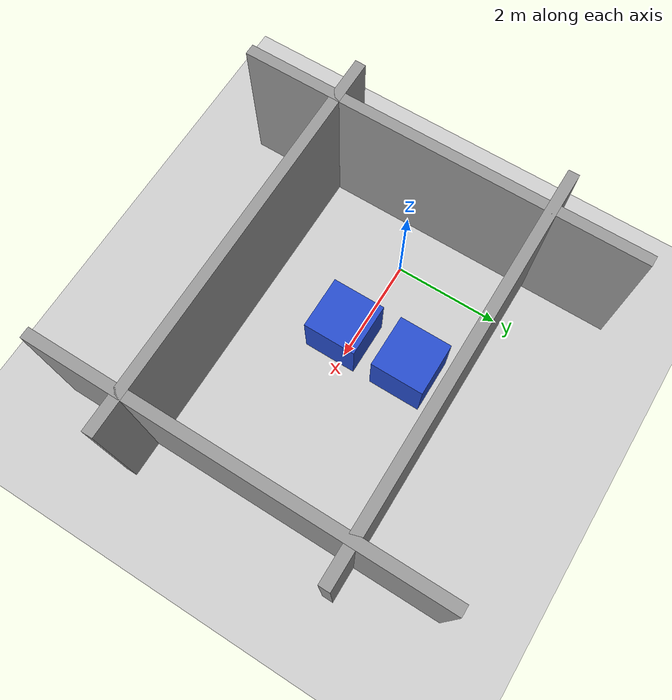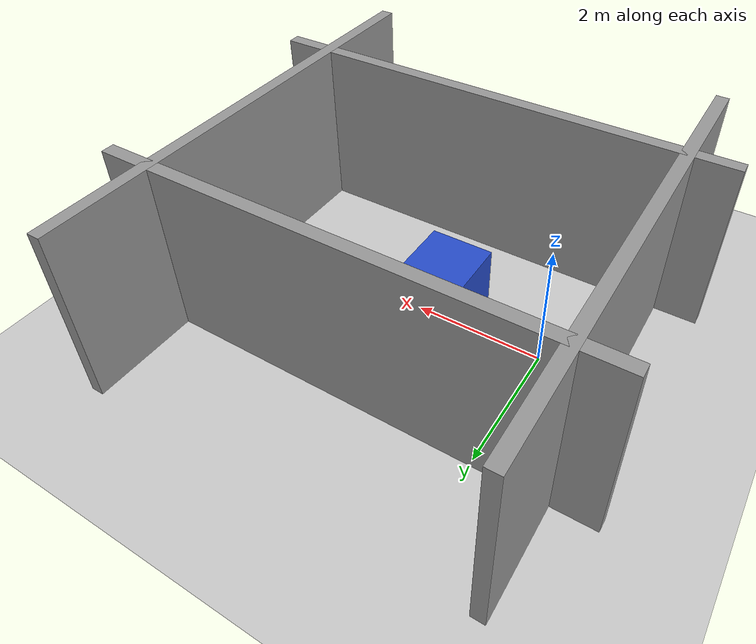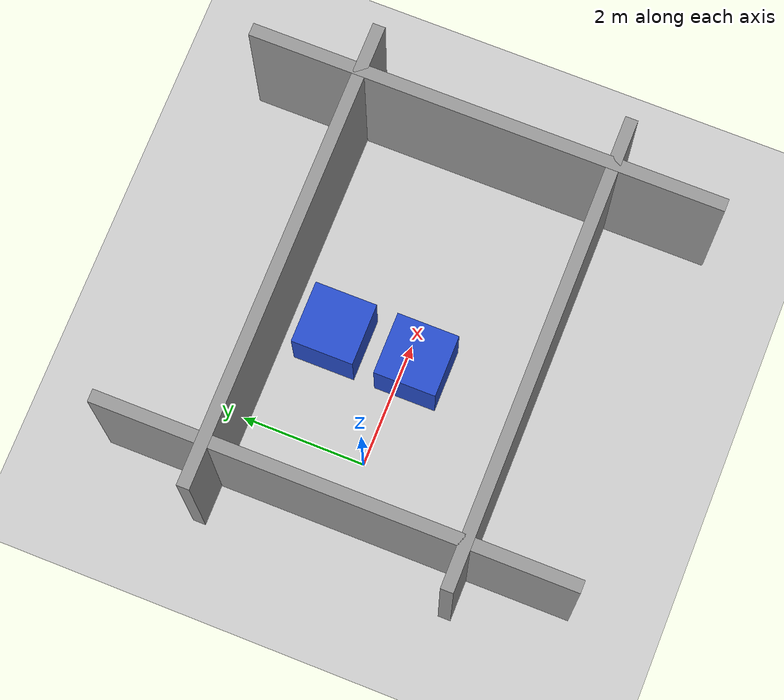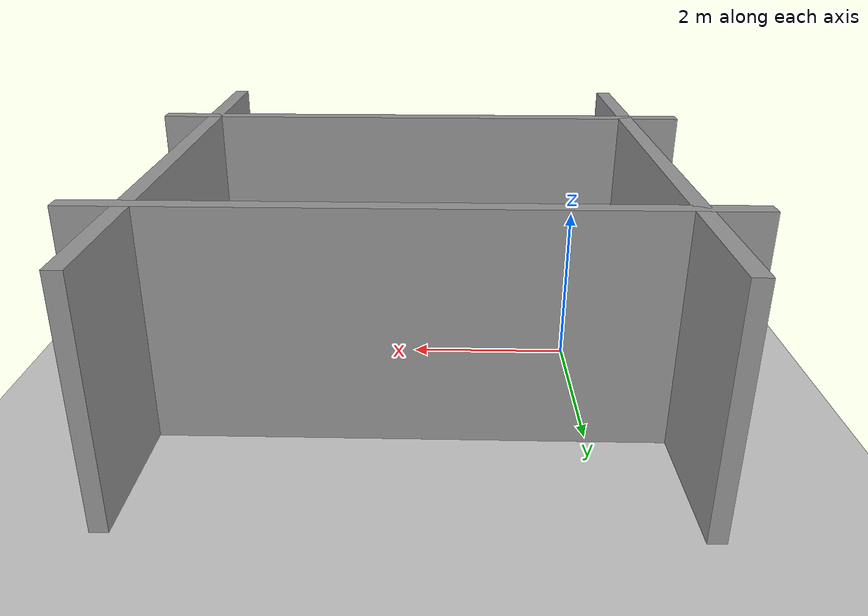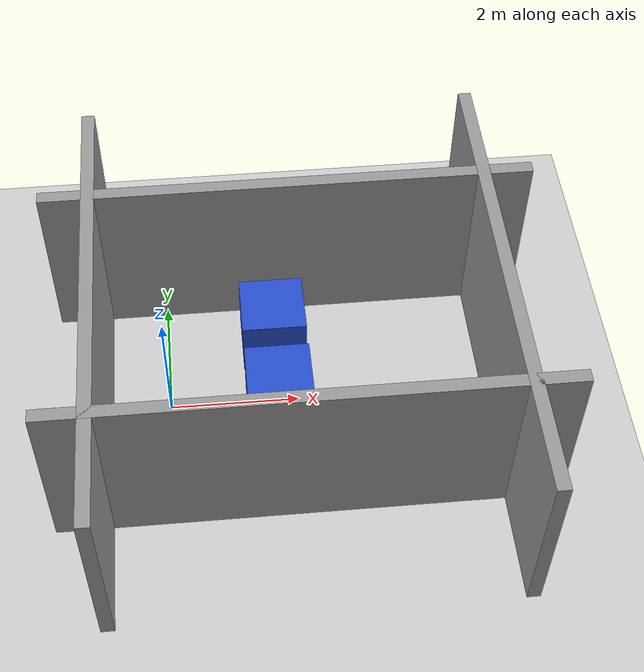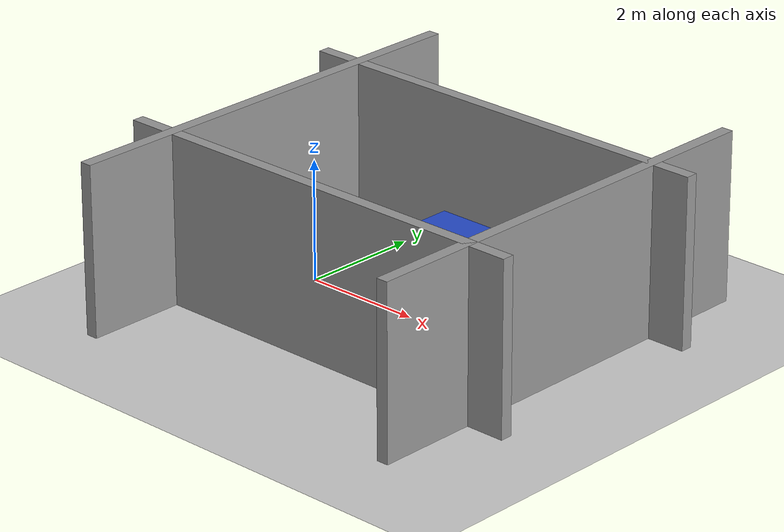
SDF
<sdf version='1.7'>
  <world name='default'>
    <light name='sun' type='directional'>
      <cast_shadows>1</cast_shadows>
      <pose>0 0 10 0 -0 0</pose>
      <diffuse>0.8 0.8 0.8 1</diffuse>
      <specular>0.2 0.2 0.2 1</specular>
      <attenuation>
        <range>1000</range>
        <constant>0.9</constant>
        <linear>0.01</linear>
        <quadratic>0.001</quadratic>
      </attenuation>
      <direction>-0.5 0.1 -0.9</direction>
      <spot>
        <inner_angle>0</inner_angle>
        <outer_angle>0</outer_angle>
        <falloff>0</falloff>
      </spot>
    </light>
    <model name='ground_plane'>
      <static>1</static>
      <link name='link'>
        <collision name='collision'>
          <geometry>
            <plane>
              <normal>0 0 1</normal>
              <size>100 100</size>
            </plane>
          </geometry>
          <surface>
            <contact>
              <collide_bitmask>65535</collide_bitmask>
              <ode/>
            </contact>
            <friction>
              <ode>
                <mu>100</mu>
                <mu2>50</mu2>
              </ode>
              <torsional>
                <ode/>
              </torsional>
            </friction>
            <bounce/>
          </surface>
          <max_contacts>10</max_contacts>
        </collision>
        <visual name='visual'>
          <cast_shadows>0</cast_shadows>
          <geometry>
            <plane>
              <normal>0 0 1</normal>
              <size>100 100</size>
            </plane>
          </geometry>
          <material>
            <script>
              <uri>file://media/materials/scripts/gazebo.material</uri>
              <name>Gazebo/Grey</name>
            </script>
          </material>
        </visual>
        <self_collide>0</self_collide>
        <enable_wind>0</enable_wind>
        <kinematic>0</kinematic>
      </link>
    </model>
    <gravity>0 0 -9.8</gravity>
    <magnetic_field>6e-06 2.3e-05 -4.2e-05</magnetic_field>
    <atmosphere type='adiabatic'/>
    <physics type='ode'>
      <max_step_size>0.001</max_step_size>
      <real_time_factor>1</real_time_factor>
      <real_time_update_rate>1000</real_time_update_rate>
    </physics>
    <scene>
      <ambient>0.4 0.4 0.4 1</ambient>
      <background>0.7 0.7 0.7 1</background>
      <shadows>1</shadows>
    </scene>
    <audio>
      <device>default</device>
    </audio>
    <wind/>
    <spherical_coordinates>
      <surface_model>EARTH_WGS84</surface_model>
      <latitude_deg>0</latitude_deg>
      <longitude_deg>0</longitude_deg>
      <elevation>0</elevation>
      <heading_deg>0</heading_deg>
    </spherical_coordinates>
    <model name='grey_wall'>
      <static>1</static>
      <pose>2 -2 0 0 -0 0</pose>
      <link name='link'>
        <pose>0 0 1.4 0 -0 0</pose>
        <collision name='collision'>
          <geometry>
            <box>
              <size>7.5 0.2 2.8</size>
            </box>
          </geometry>
          <max_contacts>10</max_contacts>
          <surface>
            <contact>
              <ode/>
            </contact>
            <bounce/>
            <friction>
              <torsional>
                <ode/>
              </torsional>
              <ode/>
            </friction>
          </surface>
        </collision>
        <visual name='visual'>
          <cast_shadows>0</cast_shadows>
          <geometry>
            <box>
              <size>7.5 0.2 2.8</size>
            </box>
          </geometry>
          <material>
            <script>
              <uri>model://grey_wall/materials/scripts</uri>
              <uri>model://grey_wall/materials/textures</uri>
              <name>vrc/grey_wall</name>
            </script>
          </material>
        </visual>
        <self_collide>0</self_collide>
        <enable_wind>0</enable_wind>
        <kinematic>0</kinematic>
      </link>
    </model>
    <model name='grey_wall_0'>
      <static>1</static>
      <pose>2 2 0 0 -0 0</pose>
      <link name='link'>
        <pose>0 0 1.4 0 -0 0</pose>
        <collision name='collision'>
          <geometry>
            <box>
              <size>7.5 0.2 2.8</size>
            </box>
          </geometry>
          <max_contacts>10</max_contacts>
          <surface>
            <contact>
              <ode/>
            </contact>
            <bounce/>
            <friction>
              <torsional>
                <ode/>
              </torsional>
              <ode/>
            </friction>
          </surface>
        </collision>
        <visual name='visual'>
          <cast_shadows>0</cast_shadows>
          <geometry>
            <box>
              <size>7.5 0.2 2.8</size>
            </box>
          </geometry>
          <material>
            <script>
              <uri>model://grey_wall/materials/scripts</uri>
              <uri>model://grey_wall/materials/textures</uri>
              <name>vrc/grey_wall</name>
            </script>
          </material>
        </visual>
        <self_collide>0</self_collide>
        <enable_wind>0</enable_wind>
        <kinematic>0</kinematic>
      </link>
    </model>
    <model name='grey_wall_1'>
      <static>1</static>
      <pose>-1 0 0 0 -0 1.57071</pose>
      <link name='link'>
        <pose>0 0 1.4 0 -0 0</pose>
        <collision name='collision'>
          <geometry>
            <box>
              <size>7.5 0.2 2.8</size>
            </box>
          </geometry>
          <max_contacts>10</max_contacts>
          <surface>
            <contact>
              <ode/>
            </contact>
            <bounce/>
            <friction>
              <torsional>
                <ode/>
              </torsional>
              <ode/>
            </friction>
          </surface>
        </collision>
        <visual name='visual'>
          <cast_shadows>0</cast_shadows>
          <geometry>
            <box>
              <size>7.5 0.2 2.8</size>
            </box>
          </geometry>
          <material>
            <script>
              <uri>model://grey_wall/materials/scripts</uri>
              <uri>model://grey_wall/materials/textures</uri>
              <name>vrc/grey_wall</name>
            </script>
          </material>
        </visual>
        <self_collide>0</self_collide>
        <enable_wind>0</enable_wind>
        <kinematic>0</kinematic>
      </link>
    </model>
    <model name='grey_wall_2'>
      <static>1</static>
      <pose>5 0 0 0 -0 1.57071</pose>
      <link name='link'>
        <pose>0 0 1.4 0 -0 0</pose>
        <collision name='collision'>
          <geometry>
            <box>
              <size>7.5 0.2 2.8</size>
            </box>
          </geometry>
          <max_contacts>10</max_contacts>
          <surface>
            <contact>
              <ode/>
            </contact>
            <bounce/>
            <friction>
              <torsional>
                <ode/>
              </torsional>
              <ode/>
            </friction>
          </surface>
        </collision>
        <visual name='visual'>
          <cast_shadows>0</cast_shadows>
          <geometry>
            <box>
              <size>7.5 0.2 2.8</size>
            </box>
          </geometry>
          <material>
            <script>
              <uri>model://grey_wall/materials/scripts</uri>
              <uri>model://grey_wall/materials/textures</uri>
              <name>vrc/grey_wall</name>
            </script>
          </material>
        </visual>
        <self_collide>0</self_collide>
        <enable_wind>0</enable_wind>
        <kinematic>0</kinematic>
      </link>
    </model>
    <model name='unit_box'>
      <pose>1.6848 -0.197988 0.499995 0 0 0</pose>
      <link name='link'>
        <inertial>
          <mass>1</mass>
          <inertia>
            <ixx>0.166667</ixx>
            <ixy>0</ixy>
            <ixz>0</ixz>
            <iyy>0.166667</iyy>
            <iyz>0</iyz>
            <izz>0.166667</izz>
          </inertia>
          <pose>0 0 0 0 -0 0</pose>
        </inertial>
        <collision name='collision'>
          <geometry>
            <box>
              <size>1 1 1</size>
            </box>
          </geometry>
          <max_contacts>10</max_contacts>
          <surface>
            <contact>
              <ode/>
            </contact>
            <bounce/>
            <friction>
              <torsional>
                <ode/>
              </torsional>
              <ode/>
            </friction>
          </surface>
        </collision>
        <visual name='visual'>
          <geometry>
            <box>
              <size>1 1 1</size>
            </box>
          </geometry>
          <material>
            <script>
              <name>Gazebo/Blue</name>
              <uri>file://media/materials/scripts/gazebo.material</uri>
            </script>
          </material>
        </visual>
        <self_collide>0</self_collide>
        <enable_wind>0</enable_wind>
        <kinematic>0</kinematic>
      </link>
    </model>
    <model name='unit_box_0'>
      <pose>1.6848 1.1436 0.5 0 -0 0</pose>
      <link name='link'>
        <inertial>
          <mass>1</mass>
          <inertia>
            <ixx>0.166667</ixx>
            <ixy>0</ixy>
            <ixz>0</ixz>
            <iyy>0.166667</iyy>
            <iyz>0</iyz>
            <izz>0.166667</izz>
          </inertia>
          <pose>0 0 0 0 -0 0</pose>
        </inertial>
        <collision name='collision'>
          <geometry>
            <box>
              <size>1 1 1</size>
            </box>
          </geometry>
          <max_contacts>10</max_contacts>
          <surface>
            <contact>
              <ode/>
            </contact>
            <bounce/>
            <friction>
              <torsional>
                <ode/>
              </torsional>
              <ode/>
            </friction>
          </surface>
        </collision>
        <visual name='visual'>
          <geometry>
            <box>
              <size>1 1 1</size>
            </box>
          </geometry>
          <material>
            <script>
              <name>Gazebo/Blue</name>
              <uri>file://media/materials/scripts/gazebo.material</uri>
            </script>
          </material>
        </visual>
        <self_collide>0</self_collide>
        <enable_wind>0</enable_wind>
        <kinematic>0</kinematic>
      </link>
    </model>
  </world>
</sdf>
